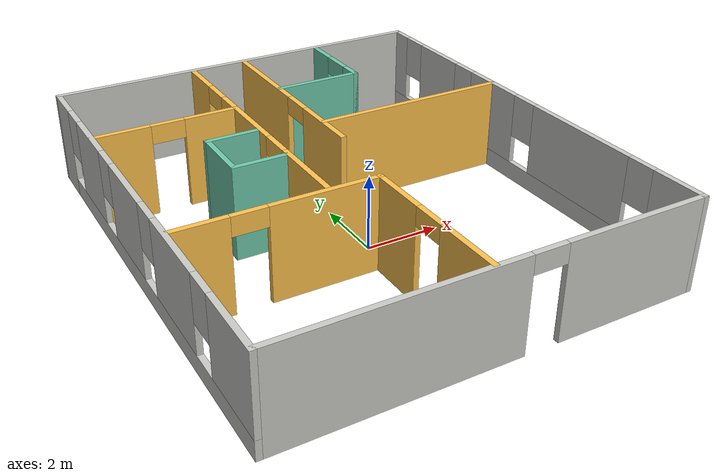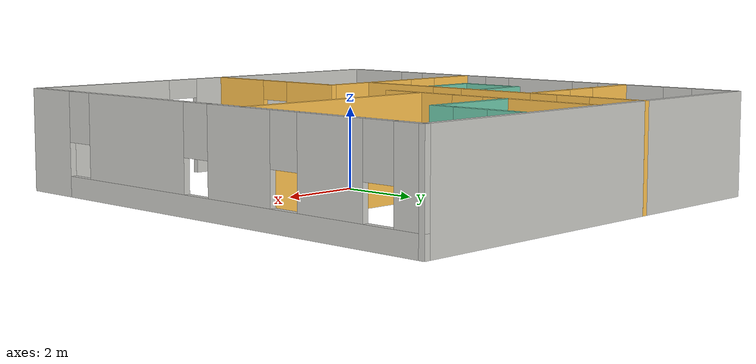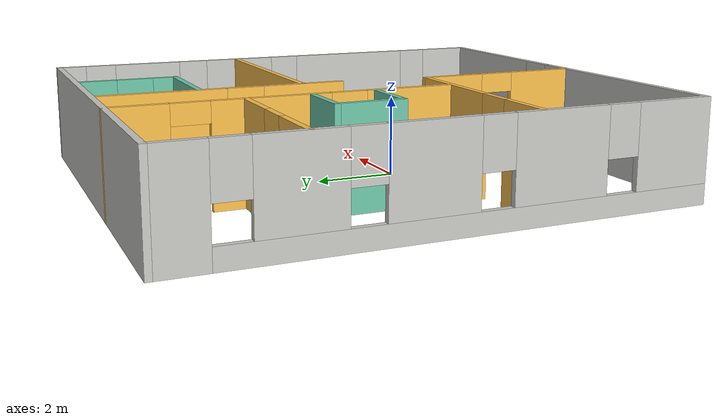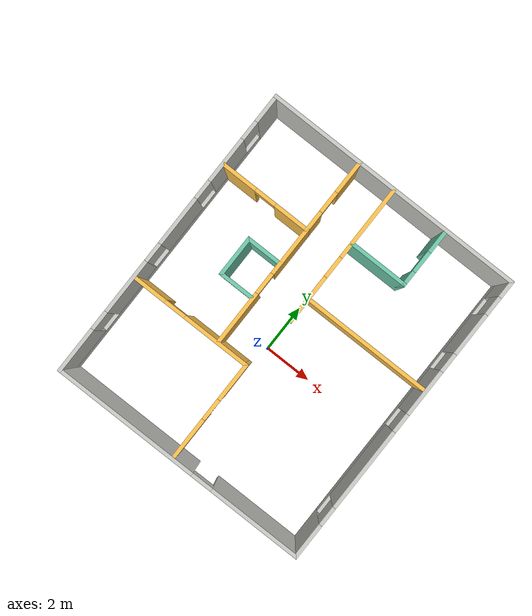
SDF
<?xml version='1.0'?>
<sdf version='1.6'>
  <model name='my_building'>
    <pose frame=''>0.030865 1.12129 0 0 -0 0</pose>
    <link name='Wall_16'>
      <pose frame=''>0 -6.30017 0 0 -0 0</pose>
      <visual name='Wall_16_Visual_0'>
        <pose frame=''>-2.42617 0 1.25 0 -0 0</pose>
        <geometry>
          <box>
            <size>6.14766 0.15 2.5</size>
          </box>
        </geometry>
        <material>
          <script>
            <uri>file://media/materials/scripts/gazebo.material</uri>
            <name>Gazebo/CeilingTiled</name>
          </script>
          <ambient>1 1 1 1</ambient>
        </material>
      </visual>
      <collision name='Wall_16_Collision_0'>
        <geometry>
          <box>
            <size>6.14766 0.15 2.5</size>
          </box>
        </geometry>
        <pose frame=''>-2.42617 0 1.25 0 -0 0</pose>
      </collision>
      <visual name='Wall_16_Visual_1'>
        <pose frame=''>3.52383 0 1.25 0 -0 0</pose>
        <geometry>
          <box>
            <size>3.95234 0.15 2.5</size>
          </box>
        </geometry>
        <material>
          <script>
            <uri>file://media/materials/scripts/gazebo.material</uri>
            <name>Gazebo/CeilingTiled</name>
          </script>
          <ambient>1 1 1 1</ambient>
        </material>
      </visual>
      <collision name='Wall_16_Collision_1'>
        <geometry>
          <box>
            <size>3.95234 0.15 2.5</size>
          </box>
        </geometry>
        <pose frame=''>3.52383 0 1.25 0 -0 0</pose>
      </collision>
      <visual name='Wall_16_Visual_2'>
        <pose frame=''>1.09766 0 2.25 0 -0 0</pose>
        <geometry>
          <box>
            <size>0.9 0.15 0.5</size>
          </box>
        </geometry>
        <material>
          <script>
            <uri>file://media/materials/scripts/gazebo.material</uri>
            <name>Gazebo/CeilingTiled</name>
          </script>
          <ambient>1 1 1 1</ambient>
        </material>
      </visual>
      <collision name='Wall_16_Collision_2'>
        <geometry>
          <box>
            <size>0.9 0.15 0.5</size>
          </box>
        </geometry>
        <pose frame=''>1.09766 0 2.25 0 -0 0</pose>
      </collision>
    </link>
    <link name='Wall_17'>
      <pose frame=''>5.425 -0.000173 0 0 -0 1.5708</pose>
      <visual name='Wall_17_Visual_0'>
        <pose frame=''>-5.62049 0 1.25 0 -0 0</pose>
        <geometry>
          <box>
            <size>1.50902 0.15 2.5</size>
          </box>
        </geometry>
        <material>
          <script>
            <uri>file://media/materials/scripts/gazebo.material</uri>
            <name>Gazebo/CeilingTiled</name>
          </script>
          <ambient>1 1 1 1</ambient>
        </material>
      </visual>
      <collision name='Wall_17_Collision_0'>
        <geometry>
          <box>
            <size>1.50902 0.15 2.5</size>
          </box>
        </geometry>
        <pose frame=''>-5.62049 0 1.25 0 -0 0</pose>
      </collision>
      <visual name='Wall_17_Visual_1'>
        <pose frame=''>0.754508 0 0.25 0 -0 0</pose>
        <geometry>
          <box>
            <size>11.241 0.15 0.5</size>
          </box>
        </geometry>
        <material>
          <script>
            <uri>file://media/materials/scripts/gazebo.material</uri>
            <name>Gazebo/CeilingTiled</name>
          </script>
          <ambient>1 1 1 1</ambient>
        </material>
      </visual>
      <collision name='Wall_17_Collision_1'>
        <geometry>
          <box>
            <size>11.241 0.15 0.5</size>
          </box>
        </geometry>
        <pose frame=''>0.754508 0 0.25 0 -0 0</pose>
      </collision>
      <visual name='Wall_17_Visual_2'>
        <pose frame=''>-2.32184 0 1.5 0 -0 0</pose>
        <geometry>
          <box>
            <size>3.48829 0.15 2</size>
          </box>
        </geometry>
        <material>
          <script>
            <uri>file://media/materials/scripts/gazebo.material</uri>
            <name>Gazebo/CeilingTiled</name>
          </script>
          <ambient>1 1 1 1</ambient>
        </material>
      </visual>
      <collision name='Wall_17_Collision_2'>
        <geometry>
          <box>
            <size>3.48829 0.15 2</size>
          </box>
        </geometry>
        <pose frame=''>-2.32184 0 1.5 0 -0 0</pose>
      </collision>
      <visual name='Wall_17_Visual_3'>
        <pose frame=''>1.20791 0 1.5 0 -0 0</pose>
        <geometry>
          <box>
            <size>1.97121 0.15 2</size>
          </box>
        </geometry>
        <material>
          <script>
            <uri>file://media/materials/scripts/gazebo.material</uri>
            <name>Gazebo/CeilingTiled</name>
          </script>
          <ambient>1 1 1 1</ambient>
        </material>
      </visual>
      <collision name='Wall_17_Collision_3'>
        <geometry>
          <box>
            <size>1.97121 0.15 2</size>
          </box>
        </geometry>
        <pose frame=''>1.20791 0 1.5 0 -0 0</pose>
      </collision>
      <visual name='Wall_17_Visual_4'>
        <pose frame=''>3.89821 0 1.5 0 -0 0</pose>
        <geometry>
          <box>
            <size>1.80939 0.15 2</size>
          </box>
        </geometry>
        <material>
          <script>
            <uri>file://media/materials/scripts/gazebo.material</uri>
            <name>Gazebo/CeilingTiled</name>
          </script>
          <ambient>1 1 1 1</ambient>
        </material>
      </visual>
      <collision name='Wall_17_Collision_4'>
        <geometry>
          <box>
            <size>1.80939 0.15 2</size>
          </box>
        </geometry>
        <pose frame=''>3.89821 0 1.5 0 -0 0</pose>
      </collision>
      <visual name='Wall_17_Visual_5'>
        <pose frame=''>5.98895 0 1.5 0 -0 0</pose>
        <geometry>
          <box>
            <size>0.772101 0.15 2</size>
          </box>
        </geometry>
        <material>
          <script>
            <uri>file://media/materials/scripts/gazebo.material</uri>
            <name>Gazebo/CeilingTiled</name>
          </script>
          <ambient>1 1 1 1</ambient>
        </material>
      </visual>
      <collision name='Wall_17_Collision_5'>
        <geometry>
          <box>
            <size>0.772101 0.15 2</size>
          </box>
        </geometry>
        <pose frame=''>5.98895 0 1.5 0 -0 0</pose>
      </collision>
      <visual name='Wall_17_Visual_6'>
        <pose frame=''>-4.46598 0 1.9 0 -0 0</pose>
        <geometry>
          <box>
            <size>0.8 0.15 1.2</size>
          </box>
        </geometry>
        <material>
          <script>
            <uri>file://media/materials/scripts/gazebo.material</uri>
            <name>Gazebo/CeilingTiled</name>
          </script>
          <ambient>1 1 1 1</ambient>
        </material>
      </visual>
      <collision name='Wall_17_Collision_6'>
        <geometry>
          <box>
            <size>0.8 0.15 1.2</size>
          </box>
        </geometry>
        <pose frame=''>-4.46598 0 1.9 0 -0 0</pose>
      </collision>
      <visual name='Wall_17_Visual_7'>
        <pose frame=''>-0.177693 0 1.9 0 -0 0</pose>
        <geometry>
          <box>
            <size>0.8 0.15 1.2</size>
          </box>
        </geometry>
        <material>
          <script>
            <uri>file://media/materials/scripts/gazebo.material</uri>
            <name>Gazebo/CeilingTiled</name>
          </script>
          <ambient>1 1 1 1</ambient>
        </material>
      </visual>
      <collision name='Wall_17_Collision_7'>
        <geometry>
          <box>
            <size>0.8 0.15 1.2</size>
          </box>
        </geometry>
        <pose frame=''>-0.177693 0 1.9 0 -0 0</pose>
      </collision>
      <visual name='Wall_17_Visual_8'>
        <pose frame=''>2.59351 0 1.9 0 -0 0</pose>
        <geometry>
          <box>
            <size>0.8 0.15 1.2</size>
          </box>
        </geometry>
        <material>
          <script>
            <uri>file://media/materials/scripts/gazebo.material</uri>
            <name>Gazebo/CeilingTiled</name>
          </script>
          <ambient>1 1 1 1</ambient>
        </material>
      </visual>
      <collision name='Wall_17_Collision_8'>
        <geometry>
          <box>
            <size>0.8 0.15 1.2</size>
          </box>
        </geometry>
        <pose frame=''>2.59351 0 1.9 0 -0 0</pose>
      </collision>
      <visual name='Wall_17_Visual_9'>
        <pose frame=''>5.2029 0 1.9 0 -0 0</pose>
        <geometry>
          <box>
            <size>0.8 0.15 1.2</size>
          </box>
        </geometry>
        <material>
          <script>
            <uri>file://media/materials/scripts/gazebo.material</uri>
            <name>Gazebo/CeilingTiled</name>
          </script>
          <ambient>1 1 1 1</ambient>
        </material>
      </visual>
      <collision name='Wall_17_Collision_9'>
        <geometry>
          <box>
            <size>0.8 0.15 1.2</size>
          </box>
        </geometry>
        <pose frame=''>5.2029 0 1.9 0 -0 0</pose>
      </collision>
    </link>
    <link name='Wall_19'>
      <collision name='Wall_19_Collision'>
        <geometry>
          <box>
            <size>11 0.15 2.5</size>
          </box>
        </geometry>
        <pose frame=''>0 0 1.25 0 -0 0</pose>
      </collision>
      <visual name='Wall_19_Visual'>
        <pose frame=''>0 0 1.25 0 -0 0</pose>
        <geometry>
          <box>
            <size>11 0.15 2.5</size>
          </box>
        </geometry>
        <material>
          <script>
            <uri>file://media/materials/scripts/gazebo.material</uri>
            <name>Gazebo/CeilingTiled</name>
          </script>
          <ambient>1 1 1 1</ambient>
        </material>
      </visual>
      <pose frame=''>0 6.29983 0 0 -0 3.14159</pose>
    </link>
    <link name='Wall_20'>
      <pose frame=''>-5.425 -0.000173 0 0 0 -1.5708</pose>
      <visual name='Wall_20_Visual_0'>
        <pose frame=''>-5.75633 0 1.25 0 -0 0</pose>
        <geometry>
          <box>
            <size>1.23734 0.15 2.5</size>
          </box>
        </geometry>
        <material>
          <script>
            <uri>file://media/materials/scripts/gazebo.material</uri>
            <name>Gazebo/CeilingTiled</name>
          </script>
          <ambient>1 1 1 1</ambient>
        </material>
      </visual>
      <collision name='Wall_20_Collision_0'>
        <geometry>
          <box>
            <size>1.23734 0.15 2.5</size>
          </box>
        </geometry>
        <pose frame=''>-5.75633 0 1.25 0 -0 0</pose>
      </collision>
      <visual name='Wall_20_Visual_1'>
        <pose frame=''>0.61867 0 0.25 0 -0 0</pose>
        <geometry>
          <box>
            <size>11.5127 0.15 0.5</size>
          </box>
        </geometry>
        <material>
          <script>
            <uri>file://media/materials/scripts/gazebo.material</uri>
            <name>Gazebo/CeilingTiled</name>
          </script>
          <ambient>1 1 1 1</ambient>
        </material>
      </visual>
      <collision name='Wall_20_Collision_1'>
        <geometry>
          <box>
            <size>11.5127 0.15 0.5</size>
          </box>
        </geometry>
        <pose frame=''>0.61867 0 0.25 0 -0 0</pose>
      </collision>
      <visual name='Wall_20_Visual_2'>
        <pose frame=''>-3.37228 0 1.5 0 -0 0</pose>
        <geometry>
          <box>
            <size>1.93075 0.15 2</size>
          </box>
        </geometry>
        <material>
          <script>
            <uri>file://media/materials/scripts/gazebo.material</uri>
            <name>Gazebo/CeilingTiled</name>
          </script>
          <ambient>1 1 1 1</ambient>
        </material>
      </visual>
      <collision name='Wall_20_Collision_2'>
        <geometry>
          <box>
            <size>1.93075 0.15 2</size>
          </box>
        </geometry>
        <pose frame=''>-3.37228 0 1.5 0 -0 0</pose>
      </collision>
      <visual name='Wall_20_Visual_3'>
        <pose frame=''>-0.560621 0 1.5 0 -0 0</pose>
        <geometry>
          <box>
            <size>2.09257 0.15 2</size>
          </box>
        </geometry>
        <material>
          <script>
            <uri>file://media/materials/scripts/gazebo.material</uri>
            <name>Gazebo/CeilingTiled</name>
          </script>
          <ambient>1 1 1 1</ambient>
        </material>
      </visual>
      <collision name='Wall_20_Collision_3'>
        <geometry>
          <box>
            <size>2.09257 0.15 2</size>
          </box>
        </geometry>
        <pose frame=''>-0.560621 0 1.5 0 -0 0</pose>
      </collision>
      <visual name='Wall_20_Visual_4'>
        <pose frame=''>2.45016 0 1.5 0 -0 0</pose>
        <geometry>
          <box>
            <size>2.32899 0.15 2</size>
          </box>
        </geometry>
        <material>
          <script>
            <uri>file://media/materials/scripts/gazebo.material</uri>
            <name>Gazebo/CeilingTiled</name>
          </script>
          <ambient>1 1 1 1</ambient>
        </material>
      </visual>
      <collision name='Wall_20_Collision_4'>
        <geometry>
          <box>
            <size>2.32899 0.15 2</size>
          </box>
        </geometry>
        <pose frame=''>2.45016 0 1.5 0 -0 0</pose>
      </collision>
      <visual name='Wall_20_Visual_5'>
        <pose frame=''>5.39483 0 1.5 0 -0 0</pose>
        <geometry>
          <box>
            <size>1.96034 0.15 2</size>
          </box>
        </geometry>
        <material>
          <script>
            <uri>file://media/materials/scripts/gazebo.material</uri>
            <name>Gazebo/CeilingTiled</name>
          </script>
          <ambient>1 1 1 1</ambient>
        </material>
      </visual>
      <collision name='Wall_20_Collision_5'>
        <geometry>
          <box>
            <size>1.96034 0.15 2</size>
          </box>
        </geometry>
        <pose frame=''>5.39483 0 1.5 0 -0 0</pose>
      </collision>
      <visual name='Wall_20_Visual_6'>
        <pose frame=''>-4.73766 0 1.9 0 -0 0</pose>
        <geometry>
          <box>
            <size>0.8 0.15 1.2</size>
          </box>
        </geometry>
        <material>
          <script>
            <uri>file://media/materials/scripts/gazebo.material</uri>
            <name>Gazebo/CeilingTiled</name>
          </script>
          <ambient>1 1 1 1</ambient>
        </material>
      </visual>
      <collision name='Wall_20_Collision_6'>
        <geometry>
          <box>
            <size>0.8 0.15 1.2</size>
          </box>
        </geometry>
        <pose frame=''>-4.73766 0 1.9 0 -0 0</pose>
      </collision>
      <visual name='Wall_20_Visual_7'>
        <pose frame=''>-2.00691 0 1.9 0 -0 0</pose>
        <geometry>
          <box>
            <size>0.8 0.15 1.2</size>
          </box>
        </geometry>
        <material>
          <script>
            <uri>file://media/materials/scripts/gazebo.material</uri>
            <name>Gazebo/CeilingTiled</name>
          </script>
          <ambient>1 1 1 1</ambient>
        </material>
      </visual>
      <collision name='Wall_20_Collision_7'>
        <geometry>
          <box>
            <size>0.8 0.15 1.2</size>
          </box>
        </geometry>
        <pose frame=''>-2.00691 0 1.9 0 -0 0</pose>
      </collision>
      <visual name='Wall_20_Visual_8'>
        <pose frame=''>0.885666 0 1.9 0 -0 0</pose>
        <geometry>
          <box>
            <size>0.8 0.15 1.2</size>
          </box>
        </geometry>
        <material>
          <script>
            <uri>file://media/materials/scripts/gazebo.material</uri>
            <name>Gazebo/CeilingTiled</name>
          </script>
          <ambient>1 1 1 1</ambient>
        </material>
      </visual>
      <collision name='Wall_20_Collision_8'>
        <geometry>
          <box>
            <size>0.8 0.15 1.2</size>
          </box>
        </geometry>
        <pose frame=''>0.885666 0 1.9 0 -0 0</pose>
      </collision>
      <visual name='Wall_20_Visual_9'>
        <pose frame=''>4.01466 0 1.9 0 -0 0</pose>
        <geometry>
          <box>
            <size>0.8 0.15 1.2</size>
          </box>
        </geometry>
        <material>
          <script>
            <uri>file://media/materials/scripts/gazebo.material</uri>
            <name>Gazebo/CeilingTiled</name>
          </script>
          <ambient>1 1 1 1</ambient>
        </material>
      </visual>
      <collision name='Wall_20_Collision_9'>
        <geometry>
          <box>
            <size>0.8 0.15 1.2</size>
          </box>
        </geometry>
        <pose frame=''>4.01466 0 1.9 0 -0 0</pose>
      </collision>
    </link>
    <link name='Wall_22'>
      <pose frame=''>-2.805 -1.99837 0 0 -0 0</pose>
      <visual name='Wall_22_Visual_0'>
        <pose frame=''>-1.90225 0 1.25 0 -0 0</pose>
        <geometry>
          <box>
            <size>1.4455 0.15 2.5</size>
          </box>
        </geometry>
        <material>
          <script>
            <uri>file://media/materials/scripts/gazebo.material</uri>
            <name>Gazebo/Grey</name>
          </script>
          <ambient>1 0.764706 0.305882 1</ambient>
        </material>
      </visual>
      <collision name='Wall_22_Collision_0'>
        <geometry>
          <box>
            <size>1.4455 0.15 2.5</size>
          </box>
        </geometry>
        <pose frame=''>-1.90225 0 1.25 0 -0 0</pose>
      </collision>
      <visual name='Wall_22_Visual_1'>
        <pose frame=''>1.17275 0 1.25 0 -0 0</pose>
        <geometry>
          <box>
            <size>2.9045 0.15 2.5</size>
          </box>
        </geometry>
        <material>
          <script>
            <uri>file://media/materials/scripts/gazebo.material</uri>
            <name>Gazebo/Grey</name>
          </script>
          <ambient>1 0.764706 0.305882 1</ambient>
        </material>
      </visual>
      <collision name='Wall_22_Collision_1'>
        <geometry>
          <box>
            <size>2.9045 0.15 2.5</size>
          </box>
        </geometry>
        <pose frame=''>1.17275 0 1.25 0 -0 0</pose>
      </collision>
      <visual name='Wall_22_Visual_2'>
        <pose frame=''>-0.729499 0 2.25 0 -0 0</pose>
        <geometry>
          <box>
            <size>0.9 0.15 0.5</size>
          </box>
        </geometry>
        <material>
          <script>
            <uri>file://media/materials/scripts/gazebo.material</uri>
            <name>Gazebo/Grey</name>
          </script>
          <ambient>1 0.764706 0.305882 1</ambient>
        </material>
      </visual>
      <collision name='Wall_22_Collision_2'>
        <geometry>
          <box>
            <size>0.9 0.15 0.5</size>
          </box>
        </geometry>
        <pose frame=''>-0.729499 0 2.25 0 -0 0</pose>
      </collision>
    </link>
    <link name='Wall_23'>
      <pose frame=''>-0.255 -4.12337 0 0 0 -1.5708</pose>
      <visual name='Wall_23_Visual_0'>
        <pose frame=''>-1.366 0 1.25 0 -0 0</pose>
        <geometry>
          <box>
            <size>1.66801 0.15 2.5</size>
          </box>
        </geometry>
        <material>
          <script>
            <uri>file://media/materials/scripts/gazebo.material</uri>
            <name>Gazebo/Grey</name>
          </script>
          <ambient>1 0.764706 0.305882 1</ambient>
        </material>
      </visual>
      <collision name='Wall_23_Collision_0'>
        <geometry>
          <box>
            <size>1.66801 0.15 2.5</size>
          </box>
        </geometry>
        <pose frame=''>-1.366 0 1.25 0 -0 0</pose>
      </collision>
      <visual name='Wall_23_Visual_1'>
        <pose frame=''>1.284 0 1.25 0 -0 0</pose>
        <geometry>
          <box>
            <size>1.83199 0.15 2.5</size>
          </box>
        </geometry>
        <material>
          <script>
            <uri>file://media/materials/scripts/gazebo.material</uri>
            <name>Gazebo/Grey</name>
          </script>
          <ambient>1 0.764706 0.305882 1</ambient>
        </material>
      </visual>
      <collision name='Wall_23_Collision_1'>
        <geometry>
          <box>
            <size>1.83199 0.15 2.5</size>
          </box>
        </geometry>
        <pose frame=''>1.284 0 1.25 0 -0 0</pose>
      </collision>
      <visual name='Wall_23_Visual_2'>
        <pose frame=''>-0.081993 0 2.25 0 -0 0</pose>
        <geometry>
          <box>
            <size>0.9 0.15 0.5</size>
          </box>
        </geometry>
        <material>
          <script>
            <uri>file://media/materials/scripts/gazebo.material</uri>
            <name>Gazebo/Grey</name>
          </script>
          <ambient>1 0.764706 0.305882 1</ambient>
        </material>
      </visual>
      <collision name='Wall_23_Collision_2'>
        <geometry>
          <box>
            <size>0.9 0.15 0.5</size>
          </box>
        </geometry>
        <pose frame=''>-0.081993 0 2.25 0 -0 0</pose>
      </collision>
    </link>
    <link name='Wall_25'>
      <pose frame=''>-3.49068 3.20017 0 0 -0 0</pose>
      <visual name='Wall_25_Visual_0'>
        <pose frame=''>-1.21338 0 1.25 0 -0 0</pose>
        <geometry>
          <box>
            <size>1.57325 0.15 2.5</size>
          </box>
        </geometry>
        <material>
          <script>
            <uri>file://media/materials/scripts/gazebo.material</uri>
            <name>Gazebo/Grey</name>
          </script>
          <ambient>1 0.764706 0.305882 1</ambient>
        </material>
      </visual>
      <collision name='Wall_25_Collision_0'>
        <geometry>
          <box>
            <size>1.57325 0.15 2.5</size>
          </box>
        </geometry>
        <pose frame=''>-1.21338 0 1.25 0 -0 0</pose>
      </collision>
      <visual name='Wall_25_Visual_1'>
        <pose frame=''>1.23662 0 1.25 0 -0 0</pose>
        <geometry>
          <box>
            <size>1.52675 0.15 2.5</size>
          </box>
        </geometry>
        <material>
          <script>
            <uri>file://media/materials/scripts/gazebo.material</uri>
            <name>Gazebo/Grey</name>
          </script>
          <ambient>1 0.764706 0.305882 1</ambient>
        </material>
      </visual>
      <collision name='Wall_25_Collision_1'>
        <geometry>
          <box>
            <size>1.52675 0.15 2.5</size>
          </box>
        </geometry>
        <pose frame=''>1.23662 0 1.25 0 -0 0</pose>
      </collision>
      <visual name='Wall_25_Visual_2'>
        <pose frame=''>0.023247 0 2.25 0 -0 0</pose>
        <geometry>
          <box>
            <size>0.9 0.15 0.5</size>
          </box>
        </geometry>
        <material>
          <script>
            <uri>file://media/materials/scripts/gazebo.material</uri>
            <name>Gazebo/Grey</name>
          </script>
          <ambient>1 0.764706 0.305882 1</ambient>
        </material>
      </visual>
      <collision name='Wall_25_Collision_2'>
        <geometry>
          <box>
            <size>0.9 0.15 0.5</size>
          </box>
        </geometry>
        <pose frame=''>0.023247 0 2.25 0 -0 0</pose>
      </collision>
    </link>
    <link name='Wall_26'>
      <pose frame=''>-1.56568 0.650174 0 0 0 -1.5708</pose>
      <visual name='Wall_26_Visual_0'>
        <pose frame=''>-1.57861 0 1.25 0 -0 0</pose>
        <geometry>
          <box>
            <size>2.09279 0.15 2.5</size>
          </box>
        </geometry>
        <material>
          <script>
            <uri>file://media/materials/scripts/gazebo.material</uri>
            <name>Gazebo/Grey</name>
          </script>
          <ambient>1 0.764706 0.305882 1</ambient>
        </material>
      </visual>
      <collision name='Wall_26_Collision_0'>
        <geometry>
          <box>
            <size>2.09279 0.15 2.5</size>
          </box>
        </geometry>
        <pose frame=''>-1.57861 0 1.25 0 -0 0</pose>
      </collision>
      <visual name='Wall_26_Visual_1'>
        <pose frame=''>1.49639 0 1.25 0 -0 0</pose>
        <geometry>
          <box>
            <size>2.25721 0.15 2.5</size>
          </box>
        </geometry>
        <material>
          <script>
            <uri>file://media/materials/scripts/gazebo.material</uri>
            <name>Gazebo/Grey</name>
          </script>
          <ambient>1 0.764706 0.305882 1</ambient>
        </material>
      </visual>
      <collision name='Wall_26_Collision_1'>
        <geometry>
          <box>
            <size>2.25721 0.15 2.5</size>
          </box>
        </geometry>
        <pose frame=''>1.49639 0 1.25 0 -0 0</pose>
      </collision>
      <visual name='Wall_26_Visual_2'>
        <pose frame=''>-0.08221 0 2.25 0 -0 0</pose>
        <geometry>
          <box>
            <size>0.9 0.15 0.5</size>
          </box>
        </geometry>
        <material>
          <script>
            <uri>file://media/materials/scripts/gazebo.material</uri>
            <name>Gazebo/Grey</name>
          </script>
          <ambient>1 0.764706 0.305882 1</ambient>
        </material>
      </visual>
      <collision name='Wall_26_Collision_2'>
        <geometry>
          <box>
            <size>0.9 0.15 0.5</size>
          </box>
        </geometry>
        <pose frame=''>-0.08221 0 2.25 0 -0 0</pose>
      </collision>
    </link>
    <link name='Wall_28'>
      <pose frame=''>-1.56568 4.75017 0 0 -0 1.5708</pose>
      <visual name='Wall_28_Visual_0'>
        <pose frame=''>-1.17532 0 1.25 0 -0 0</pose>
        <geometry>
          <box>
            <size>0.89935 0.15 2.5</size>
          </box>
        </geometry>
        <material>
          <script>
            <uri>file://media/materials/scripts/gazebo.material</uri>
            <name>Gazebo/Grey</name>
          </script>
          <ambient>1 0.764706 0.305882 1</ambient>
        </material>
      </visual>
      <collision name='Wall_28_Collision_0'>
        <geometry>
          <box>
            <size>0.89935 0.15 2.5</size>
          </box>
        </geometry>
        <pose frame=''>-1.17532 0 1.25 0 -0 0</pose>
      </collision>
      <visual name='Wall_28_Visual_1'>
        <pose frame=''>0.899675 0 1.25 0 -0 0</pose>
        <geometry>
          <box>
            <size>1.45065 0.15 2.5</size>
          </box>
        </geometry>
        <material>
          <script>
            <uri>file://media/materials/scripts/gazebo.material</uri>
            <name>Gazebo/Grey</name>
          </script>
          <ambient>1 0.764706 0.305882 1</ambient>
        </material>
      </visual>
      <collision name='Wall_28_Collision_1'>
        <geometry>
          <box>
            <size>1.45065 0.15 2.5</size>
          </box>
        </geometry>
        <pose frame=''>0.899675 0 1.25 0 -0 0</pose>
      </collision>
      <visual name='Wall_28_Visual_2'>
        <pose frame=''>-0.27565 0 2.25 0 -0 0</pose>
        <geometry>
          <box>
            <size>0.9 0.15 0.5</size>
          </box>
        </geometry>
        <material>
          <script>
            <uri>file://media/materials/scripts/gazebo.material</uri>
            <name>Gazebo/Grey</name>
          </script>
          <ambient>1 0.764706 0.305882 1</ambient>
        </material>
      </visual>
      <collision name='Wall_28_Collision_2'>
        <geometry>
          <box>
            <size>0.9 0.15 0.5</size>
          </box>
        </geometry>
        <pose frame=''>-0.27565 0 2.25 0 -0 0</pose>
      </collision>
    </link>
    <link name='Wall_30'>
      <collision name='Wall_30_Collision'>
        <geometry>
          <box>
            <size>1.5 0.15 2.5</size>
          </box>
        </geometry>
        <pose frame=''>0 0 1.25 0 -0 0</pose>
      </collision>
      <visual name='Wall_30_Visual'>
        <pose frame=''>0 0 1.25 0 -0 0</pose>
        <geometry>
          <box>
            <size>1.5 0.15 2.5</size>
          </box>
        </geometry>
        <material>
          <script>
            <uri>file://media/materials/scripts/gazebo.material</uri>
            <name>Gazebo/Grey</name>
          </script>
          <ambient>0.435294 0.796078 0.67451 1</ambient>
        </material>
      </visual>
      <pose frame=''>-2.32831 1.64264 0 0 -0 3.14159</pose>
    </link>
    <link name='Wall_31'>
      <collision name='Wall_31_Collision'>
        <geometry>
          <box>
            <size>1.75 0.15 2.5</size>
          </box>
        </geometry>
        <pose frame=''>0 0 1.25 0 -0 0</pose>
      </collision>
      <visual name='Wall_31_Visual'>
        <pose frame=''>0 0 1.25 0 -0 0</pose>
        <geometry>
          <box>
            <size>1.75 0.15 2.5</size>
          </box>
        </geometry>
        <material>
          <script>
            <uri>file://media/materials/scripts/gazebo.material</uri>
            <name>Gazebo/Grey</name>
          </script>
          <ambient>0.435294 0.796078 0.67451 1</ambient>
        </material>
      </visual>
      <pose frame=''>-3.00331 0.842635 0 0 0 -1.5708</pose>
    </link>
    <link name='Wall_32'>
      <collision name='Wall_32_Collision'>
        <geometry>
          <box>
            <size>1.5 0.15 2.5</size>
          </box>
        </geometry>
        <pose frame=''>0 0 1.25 0 -0 0</pose>
      </collision>
      <visual name='Wall_32_Visual'>
        <pose frame=''>0 0 1.25 0 -0 0</pose>
        <geometry>
          <box>
            <size>1.5 0.15 2.5</size>
          </box>
        </geometry>
        <material>
          <script>
            <uri>file://media/materials/scripts/gazebo.material</uri>
            <name>Gazebo/Grey</name>
          </script>
          <ambient>0.435294 0.796078 0.67451 1</ambient>
        </material>
      </visual>
      <pose frame=''>-2.32831 0.042635 0 0 -0 0</pose>
    </link>
    <link name='Wall_37'>
      <collision name='Wall_37_Collision'>
        <geometry>
          <box>
            <size>5.5 0.15 2.5</size>
          </box>
        </geometry>
        <pose frame=''>0 0 1.25 0 -0 0</pose>
      </collision>
      <visual name='Wall_37_Visual'>
        <pose frame=''>0 0 1.25 0 -0 0</pose>
        <geometry>
          <box>
            <size>5.5 0.15 2.5</size>
          </box>
        </geometry>
        <material>
          <script>
            <uri>file://media/materials/scripts/gazebo.material</uri>
            <name>Gazebo/Grey</name>
          </script>
          <ambient>1 0.764706 0.305882 1</ambient>
        </material>
      </visual>
      <pose frame=''>2.72082 1.27853 0 0 -0 0</pose>
    </link>
    <link name='Wall_39'>
      <collision name='Wall_39_Collision'>
        <geometry>
          <box>
            <size>2.5 0.15 2.5</size>
          </box>
        </geometry>
        <pose frame=''>0 0 1.25 0 -0 0</pose>
      </collision>
      <visual name='Wall_39_Visual'>
        <pose frame=''>0 0 1.25 0 -0 0</pose>
        <geometry>
          <box>
            <size>2.5 0.15 2.5</size>
          </box>
        </geometry>
        <material>
          <script>
            <uri>file://media/materials/scripts/gazebo.material</uri>
            <name>Gazebo/Grey</name>
          </script>
          <ambient>0.435294 0.796078 0.67451 1</ambient>
        </material>
      </visual>
      <pose frame=''>1.24105 3.82724 0 0 -0 0</pose>
    </link>
    <link name='Wall_40'>
      <pose frame=''>2.41605 5.00224 0 0 -0 1.5708</pose>
      <visual name='Wall_40_Visual_0'>
        <pose frame=''>-0.921692 0 1.25 0 -0 0</pose>
        <geometry>
          <box>
            <size>0.656617 0.15 2.5</size>
          </box>
        </geometry>
        <material>
          <script>
            <uri>file://media/materials/scripts/gazebo.material</uri>
            <name>Gazebo/Grey</name>
          </script>
          <ambient>0.435294 0.796078 0.67451 1</ambient>
        </material>
      </visual>
      <collision name='Wall_40_Collision_0'>
        <geometry>
          <box>
            <size>0.656617 0.15 2.5</size>
          </box>
        </geometry>
        <pose frame=''>-0.921692 0 1.25 0 -0 0</pose>
      </collision>
      <visual name='Wall_40_Visual_1'>
        <pose frame=''>0.778308 0 1.25 0 -0 0</pose>
        <geometry>
          <box>
            <size>0.943383 0.15 2.5</size>
          </box>
        </geometry>
        <material>
          <script>
            <uri>file://media/materials/scripts/gazebo.material</uri>
            <name>Gazebo/Grey</name>
          </script>
          <ambient>0.435294 0.796078 0.67451 1</ambient>
        </material>
      </visual>
      <collision name='Wall_40_Collision_1'>
        <geometry>
          <box>
            <size>0.943383 0.15 2.5</size>
          </box>
        </geometry>
        <pose frame=''>0.778308 0 1.25 0 -0 0</pose>
      </collision>
      <visual name='Wall_40_Visual_2'>
        <pose frame=''>-0.143383 0 2.25 0 -0 0</pose>
        <geometry>
          <box>
            <size>0.9 0.15 0.5</size>
          </box>
        </geometry>
        <material>
          <script>
            <uri>file://media/materials/scripts/gazebo.material</uri>
            <name>Gazebo/Grey</name>
          </script>
          <ambient>0.435294 0.796078 0.67451 1</ambient>
        </material>
      </visual>
      <collision name='Wall_40_Collision_2'>
        <geometry>
          <box>
            <size>0.9 0.15 0.5</size>
          </box>
        </geometry>
        <pose frame=''>-0.143383 0 2.25 0 -0 0</pose>
      </collision>
    </link>
    <link name='Wall_42'>
      <pose frame=''>0.021649 3.25468 0 0 -0 1.5708</pose>
      <visual name='Wall_42_Visual_0'>
        <pose frame=''>-2.01275 0 1.25 0 -0 0</pose>
        <geometry>
          <box>
            <size>2.0745 0.15 2.5</size>
          </box>
        </geometry>
        <material>
          <script>
            <uri>file://media/materials/scripts/gazebo.material</uri>
            <name>Gazebo/Grey</name>
          </script>
          <ambient>1 0.764706 0.305882 1</ambient>
        </material>
      </visual>
      <collision name='Wall_42_Collision_0'>
        <geometry>
          <box>
            <size>2.0745 0.15 2.5</size>
          </box>
        </geometry>
        <pose frame=''>-2.01275 0 1.25 0 -0 0</pose>
      </collision>
      <visual name='Wall_42_Visual_1'>
        <pose frame=''>1.48725 0 1.25 0 -0 0</pose>
        <geometry>
          <box>
            <size>3.1255 0.15 2.5</size>
          </box>
        </geometry>
        <material>
          <script>
            <uri>file://media/materials/scripts/gazebo.material</uri>
            <name>Gazebo/Grey</name>
          </script>
          <ambient>1 0.764706 0.305882 1</ambient>
        </material>
      </visual>
      <collision name='Wall_42_Collision_1'>
        <geometry>
          <box>
            <size>3.1255 0.15 2.5</size>
          </box>
        </geometry>
        <pose frame=''>1.48725 0 1.25 0 -0 0</pose>
      </collision>
      <visual name='Wall_42_Visual_2'>
        <pose frame=''>-0.5255 0 2.25 0 -0 0</pose>
        <geometry>
          <box>
            <size>0.9 0.15 0.5</size>
          </box>
        </geometry>
        <material>
          <script>
            <uri>file://media/materials/scripts/gazebo.material</uri>
            <name>Gazebo/Grey</name>
          </script>
          <ambient>1 0.764706 0.305882 1</ambient>
        </material>
      </visual>
      <collision name='Wall_42_Collision_2'>
        <geometry>
          <box>
            <size>0.9 0.15 0.5</size>
          </box>
        </geometry>
        <pose frame=''>-0.5255 0 2.25 0 -0 0</pose>
      </collision>
    </link>
    <static>1</static>
  </model>
</sdf>
